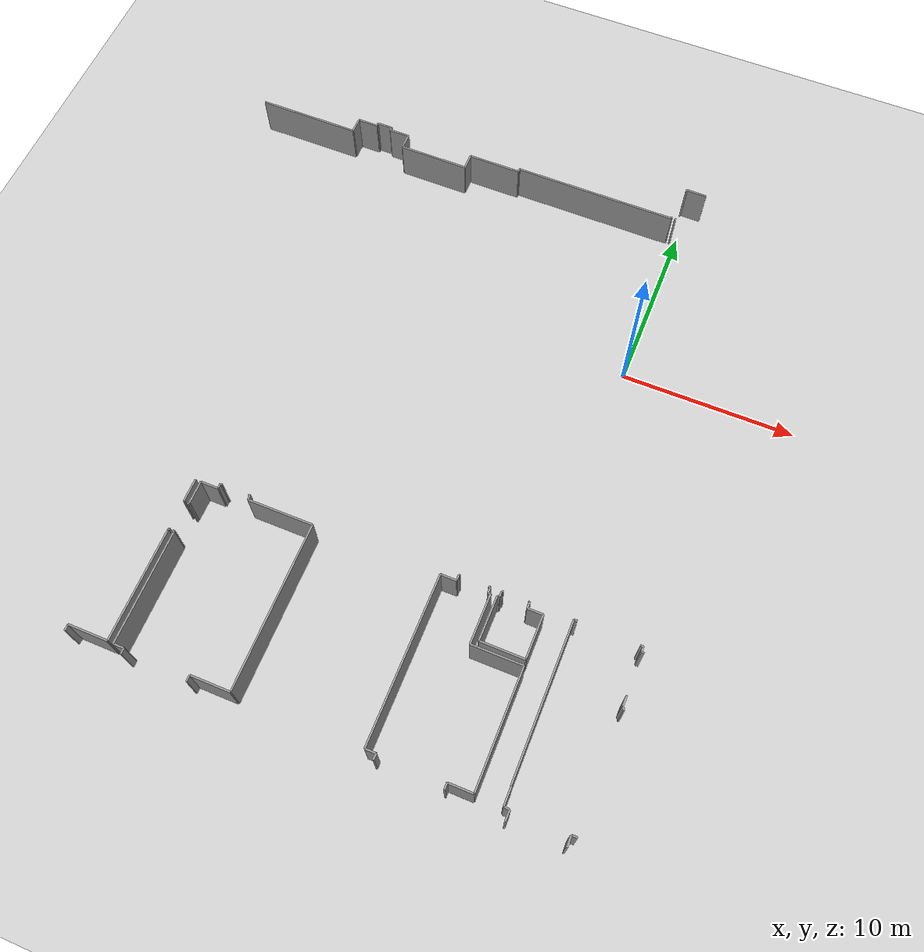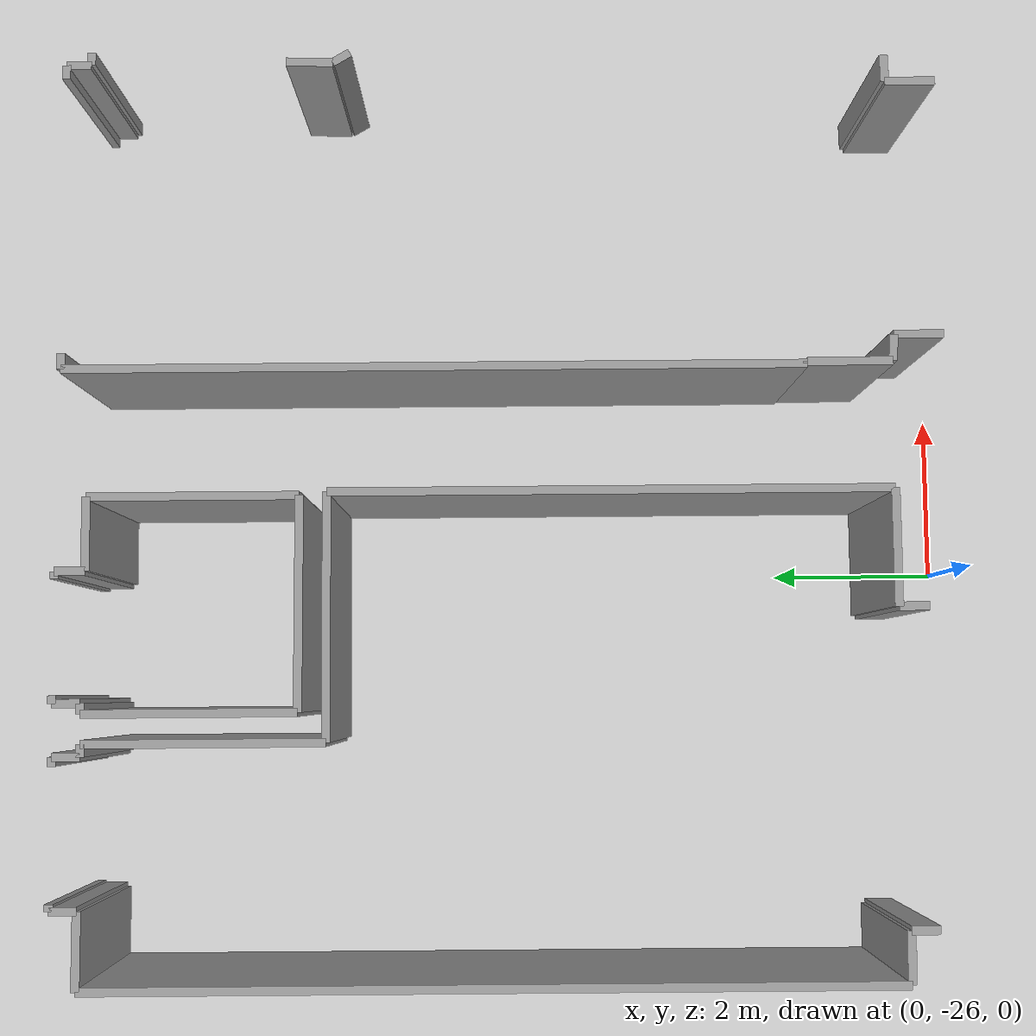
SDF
<sdf version="1.6">
 <world name="default">
  <model name="ground_plane">
   <static>1</static>
   <link name="link">
    <collision name="collision">
     <geometry><plane><normal>0 0 1</normal><size>100 100</size></plane></geometry>
     <surface><friction><ode><mu>100</mu><mu2>50</mu2></ode></friction></surface>
    </collision>
    <visual name="visual">
     <cast_shadows>0</cast_shadows>
     <geometry><plane><normal>0 0 1</normal><size>100 100</size></plane></geometry>
     <material>
      <script><uri>file://media/materials/scripts/gazebo.material</uri><name>Gazebo/Grey</name></script>
     </material>
    </visual>
   </link>
  </model>
  <model name="50045368">
   <static>1</static>
   <link name="Wall_134">
    <collision name="Wall_134_Collision">
     <geometry><box><size>0.119440914867 0.1 2.5</size></box></geometry>
     <pose>0.0597204574333 0 1.25 0 0 0</pose>
    </collision>
    <visual name="Wall_134_Visual">
     <pose>0.0597204574333 0 1.25 0 0 0</pose>
     <geometry><box><size>0.119440914867 0.1 2.5</size></box></geometry>
     <material>
      <script><uri>file://media/materials/scripts/gazebo.material</uri><name>Gazebo/Grey</name></script>
      <ambient>1 1 1 1</ambient>
     </material>
    </visual>
    <pose>52.2074968234 -15.8595933926 0 0 0 -1.57079632679</pose>
   </link>
   <link name="Wall_135">
    <collision name="Wall_135_Collision">
     <geometry><box><size>9.54612452351 0.1 2.5</size></box></geometry>
     <pose>4.77306226175 0 1.25 0 0 0</pose>
    </collision>
    <visual name="Wall_135_Visual">
     <pose>4.77306226175 0 1.25 0 0 0</pose>
     <geometry><box><size>9.54612452351 0.1 2.5</size></box></geometry>
     <material>
      <script><uri>file://media/materials/scripts/gazebo.material</uri><name>Gazebo/Grey</name></script>
      <ambient>1 1 1 1</ambient>
     </material>
    </visual>
    <pose>52.2074968234 -15.9790343075 0 0 0 3.14159265359</pose>
   </link>
   <link name="Wall_136">
    <collision name="Wall_136_Collision">
     <geometry><box><size>0.190978398983 0.1 2.5</size></box></geometry>
     <pose>0.0954891994917 0 1.25 0 0 0</pose>
    </collision>
    <visual name="Wall_136_Visual">
     <pose>0.0954891994917 0 1.25 0 0 0</pose>
     <geometry><box><size>0.190978398983 0.1 2.5</size></box></geometry>
     <material>
      <script><uri>file://media/materials/scripts/gazebo.material</uri><name>Gazebo/Grey</name></script>
      <ambient>1 1 1 1</ambient>
     </material>
    </visual>
    <pose>42.6613722999 -15.9790343075 0 0 0 -1.57079632679</pose>
   </link>
   <link name="Wall_137">
    <collision name="Wall_137_Collision">
     <geometry><box><size>3.08716645489 0.1 2.5</size></box></geometry>
     <pose>1.54358322745 0 1.25 0 0 0</pose>
    </collision>
    <visual name="Wall_137_Visual">
     <pose>1.54358322745 0 1.25 0 0 0</pose>
     <geometry><box><size>3.08716645489 0.1 2.5</size></box></geometry>
     <material>
      <script><uri>file://media/materials/scripts/gazebo.material</uri><name>Gazebo/Grey</name></script>
      <ambient>1 1 1 1</ambient>
     </material>
    </visual>
    <pose>42.6613722999 -16.1700127065 0 0 0 3.14159265359</pose>
   </link>
   <link name="Wall_138">
    <collision name="Wall_138_Collision">
     <geometry><box><size>0.911944091487 0.1 2.5</size></box></geometry>
     <pose>0.455972045743 0 1.25 0 0 0</pose>
    </collision>
    <visual name="Wall_138_Visual">
     <pose>0.455972045743 0 1.25 0 0 0</pose>
     <geometry><box><size>0.911944091487 0.1 2.5</size></box></geometry>
     <material>
      <script><uri>file://media/materials/scripts/gazebo.material</uri><name>Gazebo/Grey</name></script>
      <ambient>1 1 1 1</ambient>
     </material>
    </visual>
    <pose>39.574205845 -16.1700127065 0 0 0 -1.57079632679</pose>
   </link>
   <link name="Wall_139">
    <collision name="Wall_139_Collision">
     <geometry><box><size>4.06937738247 0.1 2.5</size></box></geometry>
     <pose>2.03468869123 0 1.25 0 0 0</pose>
    </collision>
    <visual name="Wall_139_Visual">
     <pose>2.03468869123 0 1.25 0 0 0</pose>
     <geometry><box><size>4.06937738247 0.1 2.5</size></box></geometry>
     <material>
      <script><uri>file://media/materials/scripts/gazebo.material</uri><name>Gazebo/Grey</name></script>
      <ambient>1 1 1 1</ambient>
     </material>
    </visual>
    <pose>39.574205845 -17.081956798 0 0 0 3.14159265359</pose>
   </link>
   <link name="Wall_140">
    <collision name="Wall_140_Collision">
     <geometry><box><size>0.902287166455 0.1 2.5</size></box></geometry>
     <pose>0.451143583227 0 1.25 0 0 0</pose>
    </collision>
    <visual name="Wall_140_Visual">
     <pose>0.451143583227 0 1.25 0 0 0</pose>
     <geometry><box><size>0.902287166455 0.1 2.5</size></box></geometry>
     <material>
      <script><uri>file://media/materials/scripts/gazebo.material</uri><name>Gazebo/Grey</name></script>
      <ambient>1 1 1 1</ambient>
     </material>
    </visual>
    <pose>35.5048284625 -17.081956798 0 0 0 1.57079632679</pose>
   </link>
   <link name="Wall_141">
    <collision name="Wall_141_Collision">
     <geometry><box><size>1.20381194409 0.1 2.5</size></box></geometry>
     <pose>0.601905972046 0 1.25 0 0 0</pose>
    </collision>
    <visual name="Wall_141_Visual">
     <pose>0.601905972046 0 1.25 0 0 0</pose>
     <geometry><box><size>1.20381194409 0.1 2.5</size></box></geometry>
     <material>
      <script><uri>file://media/materials/scripts/gazebo.material</uri><name>Gazebo/Grey</name></script>
      <ambient>1 1 1 1</ambient>
     </material>
    </visual>
    <pose>35.5048284625 -16.1796696315 0 0 0 3.14159265359</pose>
   </link>
   <link name="Wall_142">
    <collision name="Wall_142_Collision">
     <geometry><box><size>0.191105463787 0.1 2.5</size></box></geometry>
     <pose>0.0955527318933 0 1.25 0 0 0</pose>
    </collision>
    <visual name="Wall_142_Visual">
     <pose>0.0955527318933 0 1.25 0 0 0</pose>
     <geometry><box><size>0.191105463787 0.1 2.5</size></box></geometry>
     <material>
      <script><uri>file://media/materials/scripts/gazebo.material</uri><name>Gazebo/Grey</name></script>
      <ambient>1 1 1 1</ambient>
     </material>
    </visual>
    <pose>34.3010165184 -16.1796696315 0 0 0 1.57079632679</pose>
   </link>
   <link name="Wall_143">
    <collision name="Wall_143_Collision">
     <geometry><box><size>0.893265565438 0.1 2.5</size></box></geometry>
     <pose>0.446632782719 0 1.25 0 0 0</pose>
    </collision>
    <visual name="Wall_143_Visual">
     <pose>0.446632782719 0 1.25 0 0 0</pose>
     <geometry><box><size>0.893265565438 0.1 2.5</size></box></geometry>
     <material>
      <script><uri>file://media/materials/scripts/gazebo.material</uri><name>Gazebo/Grey</name></script>
      <ambient>1 1 1 1</ambient>
     </material>
    </visual>
    <pose>34.3010165184 -15.9885641677 0 0 0 3.14159265359</pose>
   </link>
   <link name="Wall_144">
    <collision name="Wall_144_Collision">
     <geometry><box><size>0.191105463787 0.1 2.5</size></box></geometry>
     <pose>0.0955527318933 0 1.25 0 0 0</pose>
    </collision>
    <visual name="Wall_144_Visual">
     <pose>0.0955527318933 0 1.25 0 0 0</pose>
     <geometry><box><size>0.191105463787 0.1 2.5</size></box></geometry>
     <material>
      <script><uri>file://media/materials/scripts/gazebo.material</uri><name>Gazebo/Grey</name></script>
      <ambient>1 1 1 1</ambient>
     </material>
    </visual>
    <pose>33.407750953 -15.9885641677 0 0 0 -1.57079632679</pose>
   </link>
   <link name="Wall_145">
    <collision name="Wall_145_Collision">
     <geometry><box><size>1.19898348158 0.1 2.5</size></box></geometry>
     <pose>0.599491740788 0 1.25 0 0 0</pose>
    </collision>
    <visual name="Wall_145_Visual">
     <pose>0.599491740788 0 1.25 0 0 0</pose>
     <geometry><box><size>1.19898348158 0.1 2.5</size></box></geometry>
     <material>
      <script><uri>file://media/materials/scripts/gazebo.material</uri><name>Gazebo/Grey</name></script>
      <ambient>1 1 1 1</ambient>
     </material>
    </visual>
    <pose>33.407750953 -16.1796696315 0 0 0 3.14159265359</pose>
   </link>
   <link name="Wall_146">
    <collision name="Wall_146_Collision">
     <geometry><box><size>0.902795425667 0.1 2.5</size></box></geometry>
     <pose>0.451397712834 0 1.25 0 0 0</pose>
    </collision>
    <visual name="Wall_146_Visual">
     <pose>0.451397712834 0 1.25 0 0 0</pose>
     <geometry><box><size>0.902795425667 0.1 2.5</size></box></geometry>
     <material>
      <script><uri>file://media/materials/scripts/gazebo.material</uri><name>Gazebo/Grey</name></script>
      <ambient>1 1 1 1</ambient>
     </material>
    </visual>
    <pose>32.2087674714 -16.1796696315 0 0 0 -1.57079632679</pose>
   </link>
   <link name="Wall_147">
    <collision name="Wall_147_Collision">
     <geometry><box><size>5.95196950445 0.1 2.5</size></box></geometry>
     <pose>2.97598475222 0 1.25 0 0 0</pose>
    </collision>
    <visual name="Wall_147_Visual">
     <pose>2.97598475222 0 1.25 0 0 0</pose>
     <geometry><box><size>5.95196950445 0.1 2.5</size></box></geometry>
     <material>
      <script><uri>file://media/materials/scripts/gazebo.material</uri><name>Gazebo/Grey</name></script>
      <ambient>1 1 1 1</ambient>
     </material>
    </visual>
    <pose>32.2087674714 -17.0824650572 0 0 0 3.14159265359</pose>
   </link>
   <link name="Wall_192">
    <collision name="Wall_192_Collision">
     <geometry><box><size>0.118932655654 0.1 2.5</size></box></geometry>
     <pose>0.0594663278272 0 1.25 0 0 0</pose>
    </collision>
    <visual name="Wall_192_Visual">
     <pose>0.0594663278272 0 1.25 0 0 0</pose>
     <geometry><box><size>0.118932655654 0.1 2.5</size></box></geometry>
     <material>
      <script><uri>file://media/materials/scripts/gazebo.material</uri><name>Gazebo/Grey</name></script>
      <ambient>1 1 1 1</ambient>
     </material>
    </visual>
    <pose>52.4326556544 -15.9905972046 0 0 0 1.57079632679</pose>
   </link>
   <link name="Wall_193">
    <collision name="Wall_193_Collision">
     <geometry><box><size>0.126429479034 0.1 2.5</size></box></geometry>
     <pose>0.0632147395172 0 1.25 0 0 0</pose>
    </collision>
    <visual name="Wall_193_Visual">
     <pose>0.0632147395172 0 1.25 0 0 0</pose>
     <geometry><box><size>0.126429479034 0.1 2.5</size></box></geometry>
     <material>
      <script><uri>file://media/materials/scripts/gazebo.material</uri><name>Gazebo/Grey</name></script>
      <ambient>1 1 1 1</ambient>
     </material>
    </visual>
    <pose>52.4326556544 -13.8137229987 0 0 0 1.57079632679</pose>
   </link>
   <link name="Wall_194">
    <collision name="Wall_194_Collision">
     <geometry><box><size>1.20279542567 0.1 2.5</size></box></geometry>
     <pose>0.601397712834 0 1.25 0 0 0</pose>
    </collision>
    <visual name="Wall_194_Visual">
     <pose>0.601397712834 0 1.25 0 0 0</pose>
     <geometry><box><size>1.20279542567 0.1 2.5</size></box></geometry>
     <material>
      <script><uri>file://media/materials/scripts/gazebo.material</uri><name>Gazebo/Grey</name></script>
      <ambient>1 1 1 1</ambient>
     </material>
    </visual>
    <pose>52.4326556544 -13.6872935197 0 0 0 0.0</pose>
   </link>
   <link name="Wall_412">
    <collision name="Wall_412_Collision">
     <geometry><box><size>1.31054637865 0.1 2.5</size></box></geometry>
     <pose>0.655273189327 0 1.25 0 0 0</pose>
    </collision>
    <visual name="Wall_412_Visual">
     <pose>0.655273189327 0 1.25 0 0 0</pose>
     <geometry><box><size>1.31054637865 0.1 2.5</size></box></geometry>
     <material>
      <script><uri>file://media/materials/scripts/gazebo.material</uri><name>Gazebo/Grey</name></script>
      <ambient>1 1 1 1</ambient>
     </material>
    </visual>
    <pose>34.0717916137 -41.2824650572 0 0 0 -1.57079632679</pose>
   </link>
   <link name="Wall_413">
    <collision name="Wall_413_Collision">
     <geometry><box><size>0.0251588310038 0.1 2.5</size></box></geometry>
     <pose>0.0125794155019 0 1.25 0 0 0</pose>
    </collision>
    <visual name="Wall_413_Visual">
     <pose>0.0125794155019 0 1.25 0 0 0</pose>
     <geometry><box><size>0.0251588310038 0.1 2.5</size></box></geometry>
     <material>
      <script><uri>file://media/materials/scripts/gazebo.material</uri><name>Gazebo/Grey</name></script>
      <ambient>1 1 1 1</ambient>
     </material>
    </visual>
    <pose>34.0717916137 -42.5930114358 0 0 0 0.0</pose>
   </link>
   <link name="Wall_414">
    <collision name="Wall_414_Collision">
     <geometry><box><size>0.0533672172808 0.1 2.5</size></box></geometry>
     <pose>0.0266836086404 0 1.25 0 0 0</pose>
    </collision>
    <visual name="Wall_414_Visual">
     <pose>0.0266836086404 0 1.25 0 0 0</pose>
     <geometry><box><size>0.0533672172808 0.1 2.5</size></box></geometry>
     <material>
      <script><uri>file://media/materials/scripts/gazebo.material</uri><name>Gazebo/Grey</name></script>
      <ambient>1 1 1 1</ambient>
     </material>
    </visual>
    <pose>34.0969504447 -42.5930114358 0 0 0 -1.57079632679</pose>
   </link>
   <link name="Wall_415">
    <collision name="Wall_415_Collision">
     <geometry><box><size>0.126429479034 0.1 2.5</size></box></geometry>
     <pose>0.0632147395172 0 1.25 0 0 0</pose>
    </collision>
    <visual name="Wall_415_Visual">
     <pose>0.0632147395172 0 1.25 0 0 0</pose>
     <geometry><box><size>0.126429479034 0.1 2.5</size></box></geometry>
     <material>
      <script><uri>file://media/materials/scripts/gazebo.material</uri><name>Gazebo/Grey</name></script>
      <ambient>1 1 1 1</ambient>
     </material>
    </visual>
    <pose>34.0969504447 -44.2153748412 0 0 0 -1.57079632679</pose>
   </link>
   <link name="Wall_416">
    <collision name="Wall_416_Collision">
     <geometry><box><size>0.0251588310038 0.1 2.5</size></box></geometry>
     <pose>0.0125794155019 0 1.25 0 0 0</pose>
    </collision>
    <visual name="Wall_416_Visual">
     <pose>0.0125794155019 0 1.25 0 0 0</pose>
     <geometry><box><size>0.0251588310038 0.1 2.5</size></box></geometry>
     <material>
      <script><uri>file://media/materials/scripts/gazebo.material</uri><name>Gazebo/Grey</name></script>
      <ambient>1 1 1 1</ambient>
     </material>
    </visual>
    <pose>34.0969504447 -44.3418043202 0 0 0 3.14159265359</pose>
   </link>
   <link name="Wall_417">
    <collision name="Wall_417_Collision">
     <geometry><box><size>6.32681067344 0.1 2.5</size></box></geometry>
     <pose>3.16340533672 0 1.25 0 0 0</pose>
    </collision>
    <visual name="Wall_417_Visual">
     <pose>3.16340533672 0 1.25 0 0 0</pose>
     <geometry><box><size>6.32681067344 0.1 2.5</size></box></geometry>
     <material>
      <script><uri>file://media/materials/scripts/gazebo.material</uri><name>Gazebo/Grey</name></script>
      <ambient>1 1 1 1</ambient>
     </material>
    </visual>
    <pose>34.0717916137 -44.3418043202 0 0 0 -1.57079632679</pose>
   </link>
   <link name="Wall_418">
    <collision name="Wall_418_Collision">
     <geometry><box><size>2.23684879288 0.1 2.5</size></box></geometry>
     <pose>1.11842439644 0 1.25 0 0 0</pose>
    </collision>
    <visual name="Wall_418_Visual">
     <pose>1.11842439644 0 1.25 0 0 0</pose>
     <geometry><box><size>2.23684879288 0.1 2.5</size></box></geometry>
     <material>
      <script><uri>file://media/materials/scripts/gazebo.material</uri><name>Gazebo/Grey</name></script>
      <ambient>1 1 1 1</ambient>
     </material>
    </visual>
    <pose>34.0717916137 -50.6686149936 0 0 0 3.14159265359</pose>
   </link>
   <link name="Wall_419">
    <collision name="Wall_419_Collision">
     <geometry><box><size>0.352986022872 0.1 2.5</size></box></geometry>
     <pose>0.176493011436 0 1.25 0 0 0</pose>
    </collision>
    <visual name="Wall_419_Visual">
     <pose>0.176493011436 0 1.25 0 0 0</pose>
     <geometry><box><size>0.352986022872 0.1 2.5</size></box></geometry>
     <material>
      <script><uri>file://media/materials/scripts/gazebo.material</uri><name>Gazebo/Grey</name></script>
      <ambient>1 1 1 1</ambient>
     </material>
    </visual>
    <pose>31.8349428208 -50.6686149936 0 0 0 -1.57079632679</pose>
   </link>
   <link name="Wall_422">
    <collision name="Wall_422_Collision">
     <geometry><box><size>6.36111817027 0.1 2.5</size></box></geometry>
     <pose>3.18055908513 0 1.25 0 0 0</pose>
    </collision>
    <visual name="Wall_422_Visual">
     <pose>3.18055908513 0 1.25 0 0 0</pose>
     <geometry><box><size>6.36111817027 0.1 2.5</size></box></geometry>
     <material>
      <script><uri>file://media/materials/scripts/gazebo.material</uri><name>Gazebo/Grey</name></script>
      <ambient>1 1 1 1</ambient>
     </material>
    </visual>
    <pose>34.4057179161 -50.6954256671 0 0 0 1.57079632679</pose>
   </link>
   <link name="Wall_423">
    <collision name="Wall_423_Collision">
     <geometry><box><size>0.02833545108 0.1 2.5</size></box></geometry>
     <pose>0.01416772554 0 1.25 0 0 0</pose>
    </collision>
    <visual name="Wall_423_Visual">
     <pose>0.01416772554 0 1.25 0 0 0</pose>
     <geometry><box><size>0.02833545108 0.1 2.5</size></box></geometry>
     <material>
      <script><uri>file://media/materials/scripts/gazebo.material</uri><name>Gazebo/Grey</name></script>
      <ambient>1 1 1 1</ambient>
     </material>
    </visual>
    <pose>34.4057179161 -44.3343074968 0 0 0 3.14159265359</pose>
   </link>
   <link name="Wall_424">
    <collision name="Wall_424_Collision">
     <geometry><box><size>0.100381194409 0.1 2.5</size></box></geometry>
     <pose>0.0501905972046 0 1.25 0 0 0</pose>
    </collision>
    <visual name="Wall_424_Visual">
     <pose>0.0501905972046 0 1.25 0 0 0</pose>
     <geometry><box><size>0.100381194409 0.1 2.5</size></box></geometry>
     <material>
      <script><uri>file://media/materials/scripts/gazebo.material</uri><name>Gazebo/Grey</name></script>
      <ambient>1 1 1 1</ambient>
     </material>
    </visual>
    <pose>34.3773824651 -44.3343074968 0 0 0 1.57079632679</pose>
   </link>
   <link name="Wall_425">
    <collision name="Wall_425_Collision">
     <geometry><box><size>0.109402795426 0.1 2.5</size></box></geometry>
     <pose>0.0547013977128 0 1.25 0 0 0</pose>
    </collision>
    <visual name="Wall_425_Visual">
     <pose>0.0547013977128 0 1.25 0 0 0</pose>
     <geometry><box><size>0.109402795426 0.1 2.5</size></box></geometry>
     <material>
      <script><uri>file://media/materials/scripts/gazebo.material</uri><name>Gazebo/Grey</name></script>
      <ambient>1 1 1 1</ambient>
     </material>
    </visual>
    <pose>34.3773824651 -42.7030495553 0 0 0 1.57079632679</pose>
   </link>
   <link name="Wall_426">
    <collision name="Wall_426_Collision">
     <geometry><box><size>0.0123252858958 0.1 2.5</size></box></geometry>
     <pose>0.00616264294791 0 1.25 0 0 0</pose>
    </collision>
    <visual name="Wall_426_Visual">
     <pose>0.00616264294791 0 1.25 0 0 0</pose>
     <geometry><box><size>0.0123252858958 0.1 2.5</size></box></geometry>
     <material>
      <script><uri>file://media/materials/scripts/gazebo.material</uri><name>Gazebo/Grey</name></script>
      <ambient>1 1 1 1</ambient>
     </material>
    </visual>
    <pose>34.3773824651 -42.5936467598 0 0 0 0.0</pose>
   </link>
   <link name="Wall_427">
    <collision name="Wall_427_Collision">
     <geometry><box><size>1.29783989835 0.1 2.5</size></box></geometry>
     <pose>0.648919949174 0 1.25 0 0 0</pose>
    </collision>
    <visual name="Wall_427_Visual">
     <pose>0.648919949174 0 1.25 0 0 0</pose>
     <geometry><box><size>1.29783989835 0.1 2.5</size></box></geometry>
     <material>
      <script><uri>file://media/materials/scripts/gazebo.material</uri><name>Gazebo/Grey</name></script>
      <ambient>1 1 1 1</ambient>
     </material>
    </visual>
    <pose>34.389707751 -42.5936467598 0 0 0 1.57079632679</pose>
   </link>
   <link name="Wall_428">
    <collision name="Wall_428_Collision">
     <geometry><box><size>1.01385006353 0.1 2.5</size></box></geometry>
     <pose>0.506925031766 0 1.25 0 0 0</pose>
    </collision>
    <visual name="Wall_428_Visual">
     <pose>0.506925031766 0 1.25 0 0 0</pose>
     <geometry><box><size>1.01385006353 0.1 2.5</size></box></geometry>
     <material>
      <script><uri>file://media/materials/scripts/gazebo.material</uri><name>Gazebo/Grey</name></script>
      <ambient>1 1 1 1</ambient>
     </material>
    </visual>
    <pose>34.389707751 -41.2958068615 0 0 0 0.0</pose>
   </link>
   <link name="Wall_429">
    <collision name="Wall_429_Collision">
     <geometry><box><size>0.279542566709 0.1 2.5</size></box></geometry>
     <pose>0.139771283355 0 1.25 0 0 0</pose>
    </collision>
    <visual name="Wall_429_Visual">
     <pose>0.139771283355 0 1.25 0 0 0</pose>
     <geometry><box><size>0.279542566709 0.1 2.5</size></box></geometry>
     <material>
      <script><uri>file://media/materials/scripts/gazebo.material</uri><name>Gazebo/Grey</name></script>
      <ambient>1 1 1 1</ambient>
     </material>
    </visual>
    <pose>35.4035578145 -41.2958068615 0 0 0 1.57079632679</pose>
   </link>
   <link name="Wall_430">
    <collision name="Wall_430_Collision">
     <geometry><box><size>0.0911054637865 0.1 2.5</size></box></geometry>
     <pose>0.0455527318933 0 1.25 0 0 0</pose>
    </collision>
    <visual name="Wall_430_Visual">
     <pose>0.0455527318933 0 1.25 0 0 0</pose>
     <geometry><box><size>0.0911054637865 0.1 2.5</size></box></geometry>
     <material>
      <script><uri>file://media/materials/scripts/gazebo.material</uri><name>Gazebo/Grey</name></script>
      <ambient>1 1 1 1</ambient>
     </material>
    </visual>
    <pose>35.4035578145 -41.0162642948 0 0 0 0.0</pose>
   </link>
   <link name="Wall_431">
    <collision name="Wall_431_Collision">
     <geometry><box><size>0.11918678526 0.1 2.5</size></box></geometry>
     <pose>0.0595933926302 0 1.25 0 0 0</pose>
    </collision>
    <visual name="Wall_431_Visual">
     <pose>0.0595933926302 0 1.25 0 0 0</pose>
     <geometry><box><size>0.11918678526 0.1 2.5</size></box></geometry>
     <material>
      <script><uri>file://media/materials/scripts/gazebo.material</uri><name>Gazebo/Grey</name></script>
      <ambient>1 1 1 1</ambient>
     </material>
    </visual>
    <pose>37.0299872935 -41.0162642948 0 0 0 0.0</pose>
   </link>
   <link name="Wall_432">
    <collision name="Wall_432_Collision">
     <geometry><box><size>0.266200762389 0.1 2.5</size></box></geometry>
     <pose>0.133100381194 0 1.25 0 0 0</pose>
    </collision>
    <visual name="Wall_432_Visual">
     <pose>0.133100381194 0 1.25 0 0 0</pose>
     <geometry><box><size>0.266200762389 0.1 2.5</size></box></geometry>
     <material>
      <script><uri>file://media/materials/scripts/gazebo.material</uri><name>Gazebo/Grey</name></script>
      <ambient>1 1 1 1</ambient>
     </material>
    </visual>
    <pose>37.1491740788 -41.0162642948 0 0 0 -1.57079632679</pose>
   </link>
   <link name="Wall_433">
    <collision name="Wall_433_Collision">
     <geometry><box><size>3.72884371029 0.1 2.5</size></box></geometry>
     <pose>1.86442185515 0 1.25 0 0 0</pose>
    </collision>
    <visual name="Wall_433_Visual">
     <pose>1.86442185515 0 1.25 0 0 0</pose>
     <geometry><box><size>3.72884371029 0.1 2.5</size></box></geometry>
     <material>
      <script><uri>file://media/materials/scripts/gazebo.material</uri><name>Gazebo/Grey</name></script>
      <ambient>1 1 1 1</ambient>
     </material>
    </visual>
    <pose>37.1491740788 -41.2824650572 0 0 0 0.0</pose>
   </link>
   <link name="Wall_434">
    <collision name="Wall_434_Collision">
     <geometry><box><size>9.38614993647 0.1 2.5</size></box></geometry>
     <pose>4.69307496823 0 1.25 0 0 0</pose>
    </collision>
    <visual name="Wall_434_Visual">
     <pose>4.69307496823 0 1.25 0 0 0</pose>
     <geometry><box><size>9.38614993647 0.1 2.5</size></box></geometry>
     <material>
      <script><uri>file://media/materials/scripts/gazebo.material</uri><name>Gazebo/Grey</name></script>
      <ambient>1 1 1 1</ambient>
     </material>
    </visual>
    <pose>40.8780177891 -41.2824650572 0 0 0 -1.57079632679</pose>
   </link>
   <link name="Wall_435">
    <collision name="Wall_435_Collision">
     <geometry><box><size>2.22681067344 0.1 2.5</size></box></geometry>
     <pose>1.11340533672 0 1.25 0 0 0</pose>
    </collision>
    <visual name="Wall_435_Visual">
     <pose>1.11340533672 0 1.25 0 0 0</pose>
     <geometry><box><size>2.22681067344 0.1 2.5</size></box></geometry>
     <material>
      <script><uri>file://media/materials/scripts/gazebo.material</uri><name>Gazebo/Grey</name></script>
      <ambient>1 1 1 1</ambient>
     </material>
    </visual>
    <pose>40.8780177891 -50.6686149936 0 0 0 3.14159265359</pose>
   </link>
   <link name="Wall_436">
    <collision name="Wall_436_Collision">
     <geometry><box><size>0.352986022872 0.1 2.5</size></box></geometry>
     <pose>0.176493011436 0 1.25 0 0 0</pose>
    </collision>
    <visual name="Wall_436_Visual">
     <pose>0.176493011436 0 1.25 0 0 0</pose>
     <geometry><box><size>0.352986022872 0.1 2.5</size></box></geometry>
     <material>
      <script><uri>file://media/materials/scripts/gazebo.material</uri><name>Gazebo/Grey</name></script>
      <ambient>1 1 1 1</ambient>
     </material>
    </visual>
    <pose>38.6512071156 -50.6686149936 0 0 0 -1.57079632679</pose>
   </link>
   <link name="Wall_437">
    <collision name="Wall_437_Collision">
     <geometry><box><size>0.321219822109 0.1 2.5</size></box></geometry>
     <pose>0.160609911055 0 1.25 0 0 0</pose>
    </collision>
    <visual name="Wall_437_Visual">
     <pose>0.160609911055 0 1.25 0 0 0</pose>
     <geometry><box><size>0.321219822109 0.1 2.5</size></box></geometry>
     <material>
      <script><uri>file://media/materials/scripts/gazebo.material</uri><name>Gazebo/Grey</name></script>
      <ambient>1 1 1 1</ambient>
     </material>
    </visual>
    <pose>35.0055908513 -51.0216010165 0 0 0 1.57079632679</pose>
   </link>
   <link name="Wall_438">
    <collision name="Wall_438_Collision">
     <geometry><box><size>0.599893403558 0.1 2.5</size></box></geometry>
     <pose>0.299946701779 0 1.25 0 0 0</pose>
    </collision>
    <visual name="Wall_438_Visual">
     <pose>0.299946701779 0 1.25 0 0 0</pose>
     <geometry><box><size>0.599893403558 0.1 2.5</size></box></geometry>
     <material>
      <script><uri>file://media/materials/scripts/gazebo.material</uri><name>Gazebo/Grey</name></script>
      <ambient>1 1 1 1</ambient>
     </material>
    </visual>
    <pose>35.0055908513 -50.7003811944 0 0 0 3.13333187984</pose>
   </link>
   <link name="Wall_439">
    <collision name="Wall_439_Collision">
     <geometry><box><size>9.40241423126 0.1 2.5</size></box></geometry>
     <pose>4.70120711563 0 1.25 0 0 0</pose>
    </collision>
    <visual name="Wall_439_Visual">
     <pose>4.70120711563 0 1.25 0 0 0</pose>
     <geometry><box><size>9.40241423126 0.1 2.5</size></box></geometry>
     <material>
      <script><uri>file://media/materials/scripts/gazebo.material</uri><name>Gazebo/Grey</name></script>
      <ambient>1 1 1 1</ambient>
     </material>
    </visual>
    <pose>48.0420584498 -50.6809402795 0 0 0 1.57079632679</pose>
   </link>
   <link name="Wall_440">
    <collision name="Wall_440_Collision">
     <geometry><box><size>0.890343074968 0.1 2.5</size></box></geometry>
     <pose>0.445171537484 0 1.25 0 0 0</pose>
    </collision>
    <visual name="Wall_440_Visual">
     <pose>0.445171537484 0 1.25 0 0 0</pose>
     <geometry><box><size>0.890343074968 0.1 2.5</size></box></geometry>
     <material>
      <script><uri>file://media/materials/scripts/gazebo.material</uri><name>Gazebo/Grey</name></script>
      <ambient>1 1 1 1</ambient>
     </material>
    </visual>
    <pose>48.0420584498 -41.2785260483 0 0 0 0.0</pose>
   </link>
   <link name="Wall_441">
    <collision name="Wall_441_Collision">
     <geometry><box><size>0.317280813215 0.1 2.5</size></box></geometry>
     <pose>0.158640406607 0 1.25 0 0 0</pose>
    </collision>
    <visual name="Wall_441_Visual">
     <pose>0.158640406607 0 1.25 0 0 0</pose>
     <geometry><box><size>0.317280813215 0.1 2.5</size></box></geometry>
     <material>
      <script><uri>file://media/materials/scripts/gazebo.material</uri><name>Gazebo/Grey</name></script>
      <ambient>1 1 1 1</ambient>
     </material>
    </visual>
    <pose>48.9324015248 -41.2785260483 0 0 0 1.57079632679</pose>
   </link>
   <link name="Wall_442">
    <collision name="Wall_442_Collision">
     <geometry><box><size>0.0783989834816 0.1 2.5</size></box></geometry>
     <pose>0.0391994917408 0 1.25 0 0 0</pose>
    </collision>
    <visual name="Wall_442_Visual">
     <pose>0.0391994917408 0 1.25 0 0 0</pose>
     <geometry><box><size>0.0783989834816 0.1 2.5</size></box></geometry>
     <material>
      <script><uri>file://media/materials/scripts/gazebo.material</uri><name>Gazebo/Grey</name></script>
      <ambient>1 1 1 1</ambient>
     </material>
    </visual>
    <pose>48.9324015248 -40.9612452351 0 0 0 0.0</pose>
   </link>
   <link name="Wall_443">
    <collision name="Wall_443_Collision">
     <geometry><box><size>0.104828462516 0.1 2.5</size></box></geometry>
     <pose>0.0524142312579 0 1.25 0 0 0</pose>
    </collision>
    <visual name="Wall_443_Visual">
     <pose>0.0524142312579 0 1.25 0 0 0</pose>
     <geometry><box><size>0.104828462516 0.1 2.5</size></box></geometry>
     <material>
      <script><uri>file://media/materials/scripts/gazebo.material</uri><name>Gazebo/Grey</name></script>
      <ambient>1 1 1 1</ambient>
     </material>
    </visual>
    <pose>50.5532401525 -40.9612452351 0 0 0 0.0</pose>
   </link>
   <link name="Wall_444">
    <collision name="Wall_444_Collision">
     <geometry><box><size>0.324904701398 0.1 2.5</size></box></geometry>
     <pose>0.162452350699 0 1.25 0 0 0</pose>
    </collision>
    <visual name="Wall_444_Visual">
     <pose>0.162452350699 0 1.25 0 0 0</pose>
     <geometry><box><size>0.324904701398 0.1 2.5</size></box></geometry>
     <material>
      <script><uri>file://media/materials/scripts/gazebo.material</uri><name>Gazebo/Grey</name></script>
      <ambient>1 1 1 1</ambient>
     </material>
    </visual>
    <pose>50.658068615 -40.9612452351 0 0 0 -1.57079632679</pose>
   </link>
   <link name="Wall_445">
    <collision name="Wall_445_Collision">
     <geometry><box><size>0.140787801779 0.1 2.5</size></box></geometry>
     <pose>0.0703939008895 0 1.25 0 0 0</pose>
    </collision>
    <visual name="Wall_445_Visual">
     <pose>0.0703939008895 0 1.25 0 0 0</pose>
     <geometry><box><size>0.140787801779 0.1 2.5</size></box></geometry>
     <material>
      <script><uri>file://media/materials/scripts/gazebo.material</uri><name>Gazebo/Grey</name></script>
      <ambient>1 1 1 1</ambient>
     </material>
    </visual>
    <pose>50.658068615 -41.2861499365 0 0 0 0.0</pose>
   </link>
   <link name="Wall_446">
    <collision name="Wall_446_Collision">
     <geometry><box><size>2.7956797967 0.1 2.5</size></box></geometry>
     <pose>1.39783989835 0 1.25 0 0 0</pose>
    </collision>
    <visual name="Wall_446_Visual">
     <pose>1.39783989835 0 1.25 0 0 0</pose>
     <geometry><box><size>2.7956797967 0.1 2.5</size></box></geometry>
     <material>
      <script><uri>file://media/materials/scripts/gazebo.material</uri><name>Gazebo/Grey</name></script>
      <ambient>1 1 1 1</ambient>
     </material>
    </visual>
    <pose>50.7988564168 -41.2861499365 0 0 0 -1.57079632679</pose>
   </link>
   <link name="Wall_447">
    <collision name="Wall_447_Collision">
     <geometry><box><size>2.8750952986 0.1 2.5</size></box></geometry>
     <pose>1.4375476493 0 1.25 0 0 0</pose>
    </collision>
    <visual name="Wall_447_Visual">
     <pose>1.4375476493 0 1.25 0 0 0</pose>
     <geometry><box><size>2.8750952986 0.1 2.5</size></box></geometry>
     <material>
      <script><uri>file://media/materials/scripts/gazebo.material</uri><name>Gazebo/Grey</name></script>
      <ambient>1 1 1 1</ambient>
     </material>
    </visual>
    <pose>50.7988564168 -44.0818297332 0 0 0 0.0</pose>
   </link>
   <link name="Wall_448">
    <collision name="Wall_448_Collision">
     <geometry><box><size>6.58678526048 0.1 2.5</size></box></geometry>
     <pose>3.29339263024 0 1.25 0 0 0</pose>
    </collision>
    <visual name="Wall_448_Visual">
     <pose>3.29339263024 0 1.25 0 0 0</pose>
     <geometry><box><size>6.58678526048 0.1 2.5</size></box></geometry>
     <material>
      <script><uri>file://media/materials/scripts/gazebo.material</uri><name>Gazebo/Grey</name></script>
      <ambient>1 1 1 1</ambient>
     </material>
    </visual>
    <pose>53.6739517154 -44.0818297332 0 0 0 -1.57079632679</pose>
   </link>
   <link name="Wall_449">
    <collision name="Wall_449_Collision">
     <geometry><box><size>1.37344345616 0.1 2.5</size></box></geometry>
     <pose>0.686721728081 0 1.25 0 0 0</pose>
    </collision>
    <visual name="Wall_449_Visual">
     <pose>0.686721728081 0 1.25 0 0 0</pose>
     <geometry><box><size>1.37344345616 0.1 2.5</size></box></geometry>
     <material>
      <script><uri>file://media/materials/scripts/gazebo.material</uri><name>Gazebo/Grey</name></script>
      <ambient>1 1 1 1</ambient>
     </material>
    </visual>
    <pose>53.6739517154 -50.6686149936 0 0 0 3.14159265359</pose>
   </link>
   <link name="Wall_450">
    <collision name="Wall_450_Collision">
     <geometry><box><size>0.352986022872 0.1 2.5</size></box></geometry>
     <pose>0.176493011436 0 1.25 0 0 0</pose>
    </collision>
    <visual name="Wall_450_Visual">
     <pose>0.176493011436 0 1.25 0 0 0</pose>
     <geometry><box><size>0.352986022872 0.1 2.5</size></box></geometry>
     <material>
      <script><uri>file://media/materials/scripts/gazebo.material</uri><name>Gazebo/Grey</name></script>
      <ambient>1 1 1 1</ambient>
     </material>
    </visual>
    <pose>52.3005082592 -50.6686149936 0 0 0 -1.57079632679</pose>
   </link>
   <link name="Wall_451">
    <collision name="Wall_451_Collision">
     <geometry><box><size>0.333672172808 0.1 2.5</size></box></geometry>
     <pose>0.166836086404 0 1.25 0 0 0</pose>
    </collision>
    <visual name="Wall_451_Visual">
     <pose>0.166836086404 0 1.25 0 0 0</pose>
     <geometry><box><size>0.333672172808 0.1 2.5</size></box></geometry>
     <material>
      <script><uri>file://media/materials/scripts/gazebo.material</uri><name>Gazebo/Grey</name></script>
      <ambient>1 1 1 1</ambient>
     </material>
    </visual>
    <pose>48.6480304956 -51.0216010165 0 0 0 1.57079632679</pose>
   </link>
   <link name="Wall_452">
    <collision name="Wall_452_Collision">
     <geometry><box><size>0.606012343316 0.1 2.5</size></box></geometry>
     <pose>0.303006171658 0 1.25 0 0 0</pose>
    </collision>
    <visual name="Wall_452_Visual">
     <pose>0.303006171658 0 1.25 0 0 0</pose>
     <geometry><box><size>0.606012343316 0.1 2.5</size></box></geometry>
     <material>
      <script><uri>file://media/materials/scripts/gazebo.material</uri><name>Gazebo/Grey</name></script>
      <ambient>1 1 1 1</ambient>
     </material>
    </visual>
    <pose>48.6480304956 -50.6879288437 0 0 0 3.13006034876</pose>
   </link>
   <link name="Wall_453">
    <collision name="Wall_453_Collision">
     <geometry><box><size>2.48068614994 0.1 2.5</size></box></geometry>
     <pose>1.24034307497 0 1.25 0 0 0</pose>
    </collision>
    <visual name="Wall_453_Visual">
     <pose>1.24034307497 0 1.25 0 0 0</pose>
     <geometry><box><size>2.48068614994 0.1 2.5</size></box></geometry>
     <material>
      <script><uri>file://media/materials/scripts/gazebo.material</uri><name>Gazebo/Grey</name></script>
      <ambient>1 1 1 1</ambient>
     </material>
    </visual>
    <pose>51.143202033 -43.7576874206 0 0 0 1.57079632679</pose>
   </link>
   <link name="Wall_454">
    <collision name="Wall_454_Collision">
     <geometry><box><size>0.121601016518 0.1 2.5</size></box></geometry>
     <pose>0.0608005082592 0 1.25 0 0 0</pose>
    </collision>
    <visual name="Wall_454_Visual">
     <pose>0.0608005082592 0 1.25 0 0 0</pose>
     <geometry><box><size>0.121601016518 0.1 2.5</size></box></geometry>
     <material>
      <script><uri>file://media/materials/scripts/gazebo.material</uri><name>Gazebo/Grey</name></script>
      <ambient>1 1 1 1</ambient>
     </material>
    </visual>
    <pose>51.143202033 -41.2770012706 0 0 0 0.0</pose>
   </link>
   <link name="Wall_455">
    <collision name="Wall_455_Collision">
     <geometry><box><size>0.329733163914 0.1 2.5</size></box></geometry>
     <pose>0.164866581957 0 1.25 0 0 0</pose>
    </collision>
    <visual name="Wall_455_Visual">
     <pose>0.164866581957 0 1.25 0 0 0</pose>
     <geometry><box><size>0.329733163914 0.1 2.5</size></box></geometry>
     <material>
      <script><uri>file://media/materials/scripts/gazebo.material</uri><name>Gazebo/Grey</name></script>
      <ambient>1 1 1 1</ambient>
     </material>
    </visual>
    <pose>51.2648030496 -41.2770012706 0 0 0 1.57079632679</pose>
   </link>
   <link name="Wall_456">
    <collision name="Wall_456_Collision">
     <geometry><box><size>0.0911054637865 0.1 2.5</size></box></geometry>
     <pose>0.0455527318933 0 1.25 0 0 0</pose>
    </collision>
    <visual name="Wall_456_Visual">
     <pose>0.0455527318933 0 1.25 0 0 0</pose>
     <geometry><box><size>0.0911054637865 0.1 2.5</size></box></geometry>
     <material>
      <script><uri>file://media/materials/scripts/gazebo.material</uri><name>Gazebo/Grey</name></script>
      <ambient>1 1 1 1</ambient>
     </material>
    </visual>
    <pose>51.2648030496 -40.9472681067 0 0 0 0.0</pose>
   </link>
   <link name="Wall_457">
    <collision name="Wall_457_Collision">
     <geometry><box><size>0.0867852604828 0.1 2.5</size></box></geometry>
     <pose>0.0433926302414 0 1.25 0 0 0</pose>
    </collision>
    <visual name="Wall_457_Visual">
     <pose>0.0433926302414 0 1.25 0 0 0</pose>
     <geometry><box><size>0.0867852604828 0.1 2.5</size></box></geometry>
     <material>
      <script><uri>file://media/materials/scripts/gazebo.material</uri><name>Gazebo/Grey</name></script>
      <ambient>1 1 1 1</ambient>
     </material>
    </visual>
    <pose>52.6914866582 -40.9472681067 0 0 0 0.0</pose>
   </link>
   <link name="Wall_458">
    <collision name="Wall_458_Collision">
     <geometry><box><size>0.353240152478 0.1 2.5</size></box></geometry>
     <pose>0.176620076239 0 1.25 0 0 0</pose>
    </collision>
    <visual name="Wall_458_Visual">
     <pose>0.176620076239 0 1.25 0 0 0</pose>
     <geometry><box><size>0.353240152478 0.1 2.5</size></box></geometry>
     <material>
      <script><uri>file://media/materials/scripts/gazebo.material</uri><name>Gazebo/Grey</name></script>
      <ambient>1 1 1 1</ambient>
     </material>
    </visual>
    <pose>52.7782719187 -40.9472681067 0 0 0 -1.57079632679</pose>
   </link>
   <link name="Wall_459">
    <collision name="Wall_459_Collision">
     <geometry><box><size>0.85959339263 0.1 2.5</size></box></geometry>
     <pose>0.429796696315 0 1.25 0 0 0</pose>
    </collision>
    <visual name="Wall_459_Visual">
     <pose>0.429796696315 0 1.25 0 0 0</pose>
     <geometry><box><size>0.85959339263 0.1 2.5</size></box></geometry>
     <material>
      <script><uri>file://media/materials/scripts/gazebo.material</uri><name>Gazebo/Grey</name></script>
      <ambient>1 1 1 1</ambient>
     </material>
    </visual>
    <pose>52.7782719187 -41.3005082592 0 0 0 0.0</pose>
   </link>
   <link name="Wall_460">
    <collision name="Wall_460_Collision">
     <geometry><box><size>2.46531130877 0.1 2.5</size></box></geometry>
     <pose>1.23265565438 0 1.25 0 0 0</pose>
    </collision>
    <visual name="Wall_460_Visual">
     <pose>1.23265565438 0 1.25 0 0 0</pose>
     <geometry><box><size>2.46531130877 0.1 2.5</size></box></geometry>
     <material>
      <script><uri>file://media/materials/scripts/gazebo.material</uri><name>Gazebo/Grey</name></script>
      <ambient>1 1 1 1</ambient>
     </material>
    </visual>
    <pose>53.6378653113 -41.3005082592 0 0 0 -1.57079632679</pose>
   </link>
   <link name="Wall_461">
    <collision name="Wall_461_Collision">
     <geometry><box><size>2.4946765329 0.1 2.5</size></box></geometry>
     <pose>1.24733826645 0 1.25 0 0 0</pose>
    </collision>
    <visual name="Wall_461_Visual">
     <pose>1.24733826645 0 1.25 0 0 0</pose>
     <geometry><box><size>2.4946765329 0.1 2.5</size></box></geometry>
     <material>
      <script><uri>file://media/materials/scripts/gazebo.material</uri><name>Gazebo/Grey</name></script>
      <ambient>1 1 1 1</ambient>
     </material>
    </visual>
    <pose>53.6378653113 -43.765819568 0 0 0 3.13833284748</pose>
   </link>
   <link name="Wall_462">
    <collision name="Wall_462_Collision">
     <geometry><box><size>1.0 0.1 2.5</size></box></geometry>
     <pose>0.5 0 1.25 0 0 0</pose>
    </collision>
    <visual name="Wall_462_Visual">
     <pose>0.5 0 1.25 0 0 0</pose>
     <geometry><box><size>1.0 0.1 2.5</size></box></geometry>
     <material>
      <script><uri>file://media/materials/scripts/gazebo.material</uri><name>Gazebo/Grey</name></script>
      <ambient>1 1 1 1</ambient>
     </material>
    </visual>
    <pose>55.1645489199 -50.6881829733 0 0 0 1.57079632679</pose>
   </link>
   <link name="Wall_463">
    <collision name="Wall_463_Collision">
     <geometry><box><size>0.0238881829733 0.1 2.5</size></box></geometry>
     <pose>0.0119440914867 0 1.25 0 0 0</pose>
    </collision>
    <visual name="Wall_463_Visual">
     <pose>0.0119440914867 0 1.25 0 0 0</pose>
     <geometry><box><size>0.0238881829733 0.1 2.5</size></box></geometry>
     <material>
      <script><uri>file://media/materials/scripts/gazebo.material</uri><name>Gazebo/Grey</name></script>
      <ambient>1 1 1 1</ambient>
     </material>
    </visual>
    <pose>55.1645489199 -49.6881829733 0 0 0 3.14159265359</pose>
   </link>
   <link name="Wall_464">
    <collision name="Wall_464_Collision">
     <geometry><box><size>8.71473951715 0.1 2.5</size></box></geometry>
     <pose>4.35736975858 0 1.25 0 0 0</pose>
    </collision>
    <visual name="Wall_464_Visual">
     <pose>4.35736975858 0 1.25 0 0 0</pose>
     <geometry><box><size>8.71473951715 0.1 2.5</size></box></geometry>
     <material>
      <script><uri>file://media/materials/scripts/gazebo.material</uri><name>Gazebo/Grey</name></script>
      <ambient>1 1 1 1</ambient>
     </material>
    </visual>
    <pose>55.140660737 -49.6881829733 0 0 0 1.57079632679</pose>
   </link>
   <link name="Wall_465">
    <collision name="Wall_465_Collision">
     <geometry><box><size>0.187166454892 0.1 2.5</size></box></geometry>
     <pose>0.093583227446 0 1.25 0 0 0</pose>
    </collision>
    <visual name="Wall_465_Visual">
     <pose>0.093583227446 0 1.25 0 0 0</pose>
     <geometry><box><size>0.187166454892 0.1 2.5</size></box></geometry>
     <material>
      <script><uri>file://media/materials/scripts/gazebo.material</uri><name>Gazebo/Grey</name></script>
      <ambient>1 1 1 1</ambient>
     </material>
    </visual>
    <pose>55.140660737 -40.9734434562 0 0 0 0.0</pose>
   </link>
   <link name="Wall_466">
    <collision name="Wall_466_Collision">
     <geometry><box><size>0.166073697586 0.1 2.5</size></box></geometry>
     <pose>0.0830368487929 0 1.25 0 0 0</pose>
    </collision>
    <visual name="Wall_466_Visual">
     <pose>0.0830368487929 0 1.25 0 0 0</pose>
     <geometry><box><size>0.166073697586 0.1 2.5</size></box></geometry>
     <material>
      <script><uri>file://media/materials/scripts/gazebo.material</uri><name>Gazebo/Grey</name></script>
      <ambient>1 1 1 1</ambient>
     </material>
    </visual>
    <pose>58.6392630241 -40.9734434562 0 0 0 0.0</pose>
   </link>
   <link name="Wall_467">
    <collision name="Wall_467_Collision">
     <geometry><box><size>0.295171537484 0.1 2.5</size></box></geometry>
     <pose>0.147585768742 0 1.25 0 0 0</pose>
    </collision>
    <visual name="Wall_467_Visual">
     <pose>0.147585768742 0 1.25 0 0 0</pose>
     <geometry><box><size>0.295171537484 0.1 2.5</size></box></geometry>
     <material>
      <script><uri>file://media/materials/scripts/gazebo.material</uri><name>Gazebo/Grey</name></script>
      <ambient>1 1 1 1</ambient>
     </material>
    </visual>
    <pose>58.8053367217 -40.9734434562 0 0 0 -1.57079632679</pose>
   </link>
   <link name="Wall_468">
    <collision name="Wall_468_Collision">
     <geometry><box><size>0.15374841169 0.1 2.5</size></box></geometry>
     <pose>0.076874205845 0 1.25 0 0 0</pose>
    </collision>
    <visual name="Wall_468_Visual">
     <pose>0.076874205845 0 1.25 0 0 0</pose>
     <geometry><box><size>0.15374841169 0.1 2.5</size></box></geometry>
     <material>
      <script><uri>file://media/materials/scripts/gazebo.material</uri><name>Gazebo/Grey</name></script>
      <ambient>1 1 1 1</ambient>
     </material>
    </visual>
    <pose>58.8053367217 -41.2686149936 0 0 0 0.0</pose>
   </link>
   <link name="Wall_476">
    <collision name="Wall_476_Collision">
     <geometry><box><size>0.551651458304 0.1 2.5</size></box></geometry>
     <pose>0.275825729152 0 1.25 0 0 0</pose>
    </collision>
    <visual name="Wall_476_Visual">
     <pose>0.275825729152 0 1.25 0 0 0</pose>
     <geometry><box><size>0.551651458304 0.1 2.5</size></box></geometry>
     <material>
      <script><uri>file://media/materials/scripts/gazebo.material</uri><name>Gazebo/Grey</name></script>
      <ambient>1 1 1 1</ambient>
     </material>
    </visual>
    <pose>58.8302414231 -43.5822109276 0 0 0 -1.59705756919</pose>
   </link>
   <link name="Wall_477">
    <collision name="Wall_477_Collision">
     <geometry><box><size>0.237548524378 0.1 2.5</size></box></geometry>
     <pose>0.118774262189 0 1.25 0 0 0</pose>
    </collision>
    <visual name="Wall_477_Visual">
     <pose>0.118774262189 0 1.25 0 0 0</pose>
     <geometry><box><size>0.237548524378 0.1 2.5</size></box></geometry>
     <material>
      <script><uri>file://media/materials/scripts/gazebo.material</uri><name>Gazebo/Grey</name></script>
      <ambient>1 1 1 1</ambient>
     </material>
    </visual>
    <pose>58.8157560356 -44.1336721728 0 0 0 -1.04395397385</pose>
   </link>
   <link name="Wall_495">
    <collision name="Wall_495_Collision">
     <geometry><box><size>0.319932041571 0.1 2.5</size></box></geometry>
     <pose>0.159966020785 0 1.25 0 0 0</pose>
    </collision>
    <visual name="Wall_495_Visual">
     <pose>0.159966020785 0 1.25 0 0 0</pose>
     <geometry><box><size>0.319932041571 0.1 2.5</size></box></geometry>
     <material>
      <script><uri>file://media/materials/scripts/gazebo.material</uri><name>Gazebo/Grey</name></script>
      <ambient>1 1 1 1</ambient>
     </material>
    </visual>
    <pose>58.8551461245 -50.685133418 0 0 0 -3.11537696843</pose>
   </link>
   <link name="Wall_496">
    <collision name="Wall_496_Collision">
     <geometry><box><size>0.594790343075 0.1 2.5</size></box></geometry>
     <pose>0.297395171537 0 1.25 0 0 0</pose>
    </collision>
    <visual name="Wall_496_Visual">
     <pose>0.297395171537 0 1.25 0 0 0</pose>
     <geometry><box><size>0.594790343075 0.1 2.5</size></box></geometry>
     <material>
      <script><uri>file://media/materials/scripts/gazebo.material</uri><name>Gazebo/Grey</name></script>
      <ambient>1 1 1 1</ambient>
     </material>
    </visual>
    <pose>58.5353240152 -50.693519695 0 0 0 -1.57079632679</pose>
   </link>
   <link name="Wall_497">
    <collision name="Wall_497_Collision">
     <geometry><box><size>0.587166454892 0.1 2.5</size></box></geometry>
     <pose>0.293583227446 0 1.25 0 0 0</pose>
    </collision>
    <visual name="Wall_497_Visual">
     <pose>0.293583227446 0 1.25 0 0 0</pose>
     <geometry><box><size>0.587166454892 0.1 2.5</size></box></geometry>
     <material>
      <script><uri>file://media/materials/scripts/gazebo.material</uri><name>Gazebo/Grey</name></script>
      <ambient>1 1 1 1</ambient>
     </material>
    </visual>
    <pose>55.4775095299 -51.2883100381 0 0 0 1.57079632679</pose>
   </link>
   <link name="Wall_498">
    <collision name="Wall_498_Collision">
     <geometry><box><size>0.313228863238 0.1 2.5</size></box></geometry>
     <pose>0.156614431619 0 1.25 0 0 0</pose>
    </collision>
    <visual name="Wall_498_Visual">
     <pose>0.156614431619 0 1.25 0 0 0</pose>
     <geometry><box><size>0.313228863238 0.1 2.5</size></box></geometry>
     <material>
      <script><uri>file://media/materials/scripts/gazebo.material</uri><name>Gazebo/Grey</name></script>
      <ambient>1 1 1 1</ambient>
     </material>
    </visual>
    <pose>55.4775095299 -50.7011435832 0 0 0 3.10020339296</pose>
   </link>
   <pose>-52.8 25.6383100381 0 0 0 0</pose>
  </model>
 </world>
</sdf>
